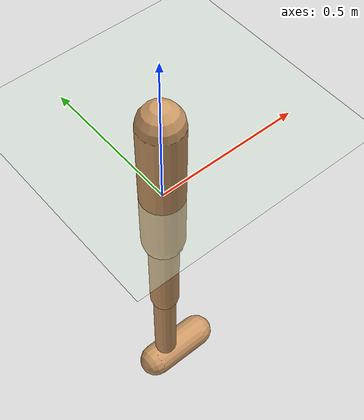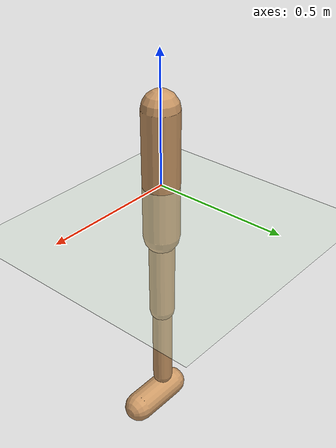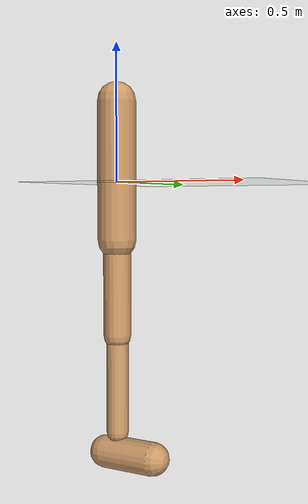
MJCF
<mujoco model="Prestoe2D">
<visual>
  <global offwidth="1200" offheight="900" elevation="-120" azimuth="120"/>
</visual>
  <compiler angle="degree" inertiafromgeom="true"/>
  <default>
    <joint armature="0.01" damping=".1" limited="true"/>
    <geom conaffinity="0" condim="3" contype="1" density="1000" friction=".7 .1 .1" rgba="0.8 0.6 .4 1"/>
  </default>
  <option integrator="RK4" timestep="0.002"/>
  <worldbody>
    <light cutoff="100" diffuse="1 1 1" dir="-0 0 -1.3" directional="true" exponent="1" pos="0 0 1.3" specular=".1 .1 .1"/>
    <geom conaffinity="1" condim="3" name="floor" pos="0 0 0" rgba="0.8 0.9 0.8 1" size="40 40 40" type="plane" material="MatPlane"/>
    <body name="torso" pos="0 0 0">
      <camera name="track" mode="trackcom" pos="0 -3 -0.25" xyaxes="1 0 0 0 0 1"/>
      <joint armature="0" axis="1 0 0" damping="0" limited="false" name="rootx" pos="0 0 0" stiffness="0" type="slide"/>
      <joint armature="0" axis="0 0 1" damping="0" limited="false" name="rootz" pos="0 0 0" stiffness="0" type="slide"/>
      <joint armature="0" axis="0 1 0" damping="0" limited="false" name="rooty" pos="0 0 0" stiffness="0" type="hinge"/>
      <geom friction="0.9" name="torso_geom" pos="0 0 0.04" size="0.07 0.25" type="capsule"/>

      <body name="r_thigh" pos="0 0 -0.21">
        <joint axis="0 1 0" name="r_hip" pos="0 0 0" range="-150 150" type="hinge"/>
        <geom friction="0.9" pos="0 0 -0.174" name="thigh_geom" size="0.05 0.174" type="capsule"/>

        <body name="r_leg" pos="0 0 -0.348">
          <joint axis="0 1 0" name="r_knee" pos="0 0 0" range="0 150" type="hinge"/>
          <geom friction="0.9" name="leg_geom" pos="0 0 -0.1775" size="0.04 0.1775" type="capsule"/>

          <body name="r_foot" pos="0 0 -0.355">
            <joint axis="0 1 0" name="r_ankle" pos="0 0 0" range="-45 45" type="hinge"/>
            <geom friction="1.9" pos="0.05 0 -0.08" quat="0.70710678118654757 0 -0.70710678118654746 0" name="foot_geom" size="0.06 0.1" type="capsule"/>
          </body>
        </body>
      </body>
      <!-- copied and then replace thigh_left, leg_left, foot_left -->
      <body name="l_thigh" pos="0 0 -0.21">
        <joint axis="0 1 0" name="l_hip" pos="0 0 0" range="-150 150" type="hinge"/>
        <geom friction="0.9" name="thigh_left_geom" rgba=".7 .3 .6 1" size="0.05 0.174" pos="0 0 -0.174" type="capsule"/>

        <body name="l_leg" pos="0 0 -0.348">
          <joint axis="0 1 0" name="l_knee" pos="0 0 0" range="0 150" type="hinge"/>
          <geom friction="0.9" name="leg_left_geom" rgba=".7 .3 .6 1" pos="0 0 -0.1775" size="0.04 0.1775" type="capsule"/>

          <body name="l_foot" pos="0 0 -0.355">
            <joint axis="0 1 0" name="l_ankle" pos="0 0 0" range="-45 45" type="hinge"/>
            <geom friction="1.9" name="foot_left_geom" rgba=".7 .3 .6 1" size="0.06 0.1" pos="0.05 0 -0.08" type="capsule" quat="0.70710678118654757 0 -0.70710678118654746 0"/>
          </body>
        </body>
      </body>
    </body>
  </worldbody>
  <actuator>
    <motor ctrllimited="true" ctrlrange="-1.0 1.0" gear="100" joint="r_hip"/>
    <motor ctrllimited="true" ctrlrange="-1.0 1.0" gear="100" joint="r_knee"/>
    <motor ctrllimited="true" ctrlrange="-1.0 1.0" gear="100" joint="r_ankle"/>
    <motor ctrllimited="true" ctrlrange="-1.0 1.0" gear="100" joint="l_hip"/>
    <motor ctrllimited="true" ctrlrange="-1.0 1.0" gear="100" joint="l_knee"/>
    <motor ctrllimited="true" ctrlrange="-1.0 1.0" gear="100" joint="l_ankle"/>
  </actuator>
    <asset>
        <texture type="skybox" builtin="gradient" rgb1=".4 .5 .6" rgb2="0 0 0" width="100" height="100"/>
        <texture builtin="flat" height="1278" mark="cross" markrgb="1 1 1" name="texgeom" random="0.01" rgb1="0.8 0.6 0.4" rgb2="0.8 0.6 0.4" type="cube" width="127"/>
        <texture builtin="checker" height="100" name="texplane" rgb1="0 0 0" rgb2="0.8 0.8 0.8" type="2d" width="100"/>
        <material name="MatPlane" reflectance="0.5" shininess="1" specular="1" texrepeat="60 60" texture="texplane"/>
        <material name="geom" texture="texgeom" texuniform="true"/>
        <material name="red_material" rgba="1 0 0 1"/>  # red
        <material name="orange_material" rgba="1 0.5 0 1"/>  # orange
        <material name="blue_material" rgba="0 0 1 1"/>  # blue
        <material name="green_material" rgba="0 1 0 1"/>  # green
        <material name="dark_green_material" rgba="0 0.55 0 1"/>  # dark green
        <material name="yellow_material" rgba="1 1 0 1"/>  # yellow
        <material name="purple_material" rgba="1 0 1 1"/>  # purple
        <material name="pink_material" rgba="1 0.75 0.75 1"/>  # pink
        <material name="white_material" rgba="1 1 1 1"/>  # white
    </asset>
  <keyframe>
    <key name = "init_pose" qpos="0  0.98  0.1
                              0.16  0.1374  0.00747 -0.76  0.66  0.017"
                        qvel="0 0 0 0 0 0 0 0 0" />
</keyframe>
</mujoco>
